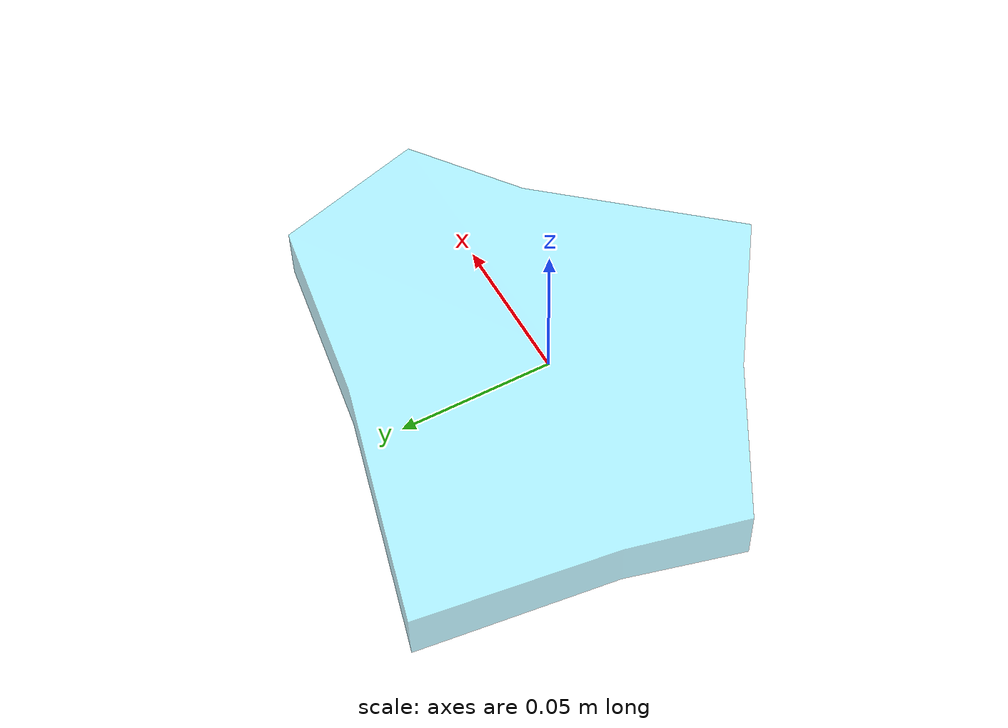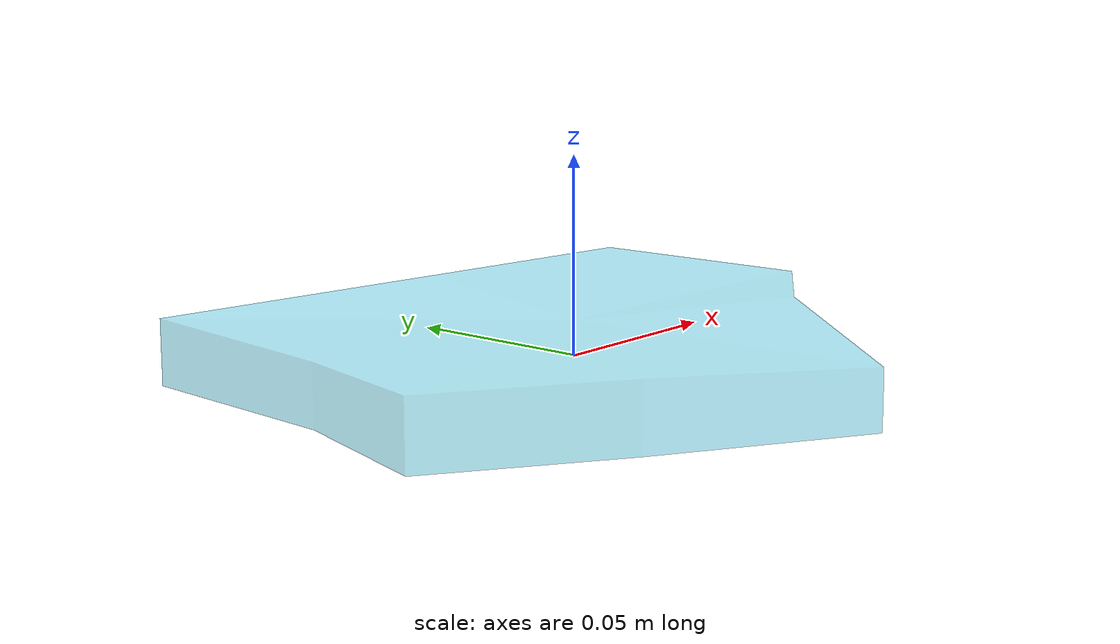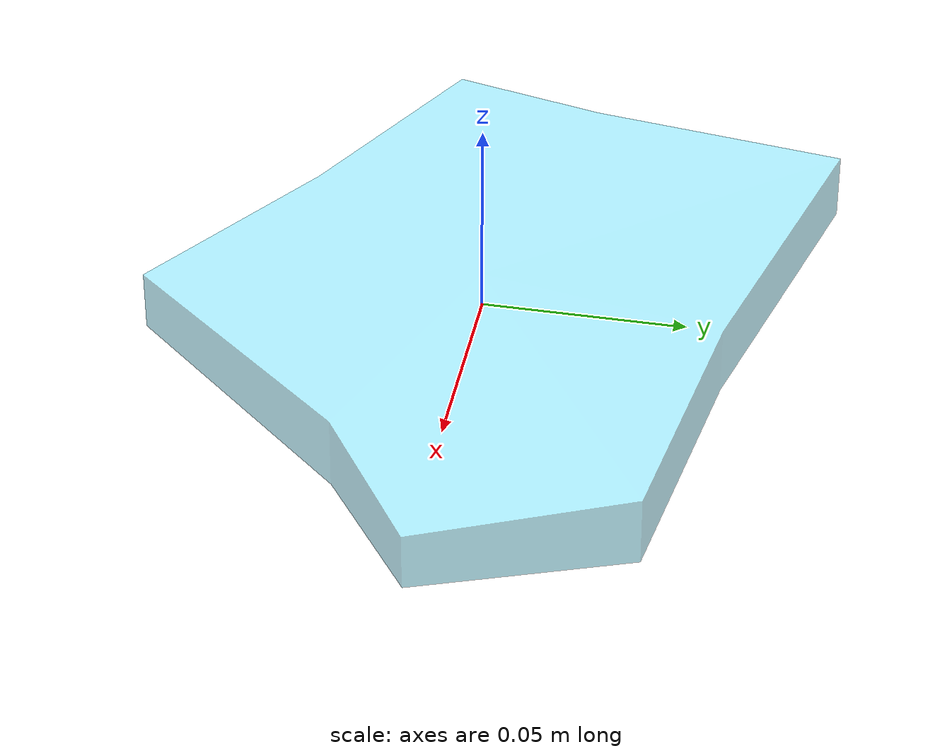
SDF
<?xml version="1.0"?>
<sdf version="1.6">
  <model name="waste_glass_shard">
    <static>false</static>
    <allow_auto_disable>false</allow_auto_disable>

    <link name="link">
      <pose>0 0 0 0 0 0</pose>

      <inertial>
        <mass>0.05</mass>
        <inertia>
          <ixx>0.0008</ixx>
          <iyy>0.0008</iyy>
          <izz>0.0008</izz>
          <ixy>0</ixy>
          <ixz>0</ixz>
          <iyz>0</iyz>
        </inertia>
      </inertial>

      <!--
        Simplified collision is used for stability.
        Visual mesh gives realistic shape, collision box keeps Gazebo physics robust.
      -->
      <collision name="collision">
        <geometry>
          <box>
            <size>0.23 0.18 0.035</size>
          </box>
        </geometry>
        <surface>
          <friction>
            <ode>
              <mu>8.0</mu>
              <mu2>8.0</mu2>
            </ode>
          </friction>
        </surface>
      </collision>

      <visual name="visual">
        <geometry>
          <mesh>
            <uri>model://realistic_waste/waste_glass_shard/meshes/glass_shard.obj</uri>
            <scale>1 1 1</scale>
          </mesh>
        </geometry>
        <material>
          <ambient>0.45 0.9 1.0 0.55</ambient>
          <diffuse>0.45 0.9 1.0 0.55</diffuse>
          <specular>0.15 0.15 0.15 1</specular>
        </material>
      </visual>
    </link>
  </model>
</sdf>
